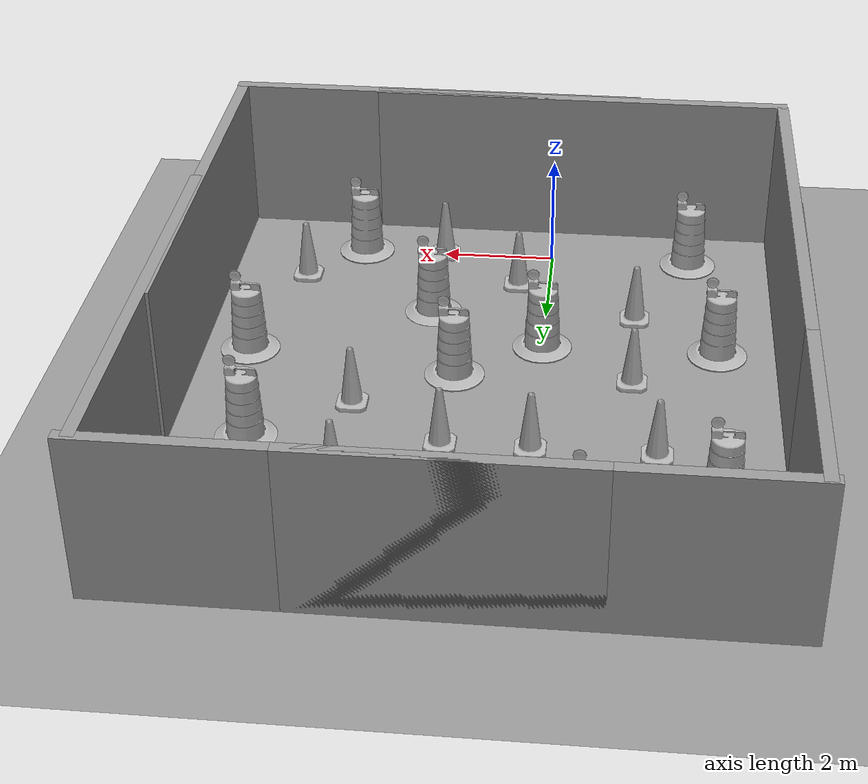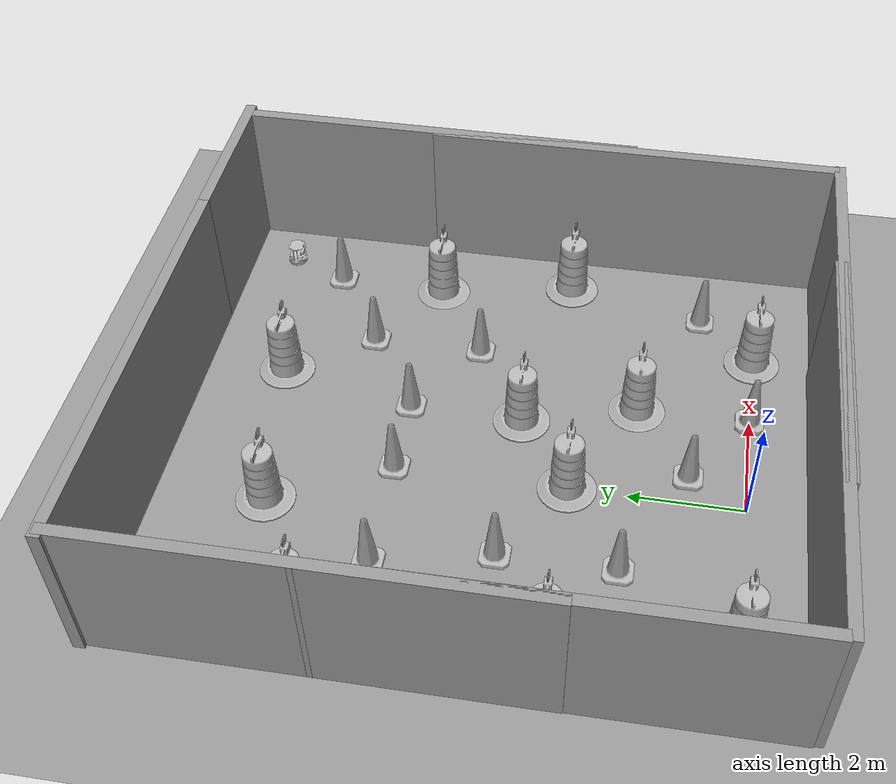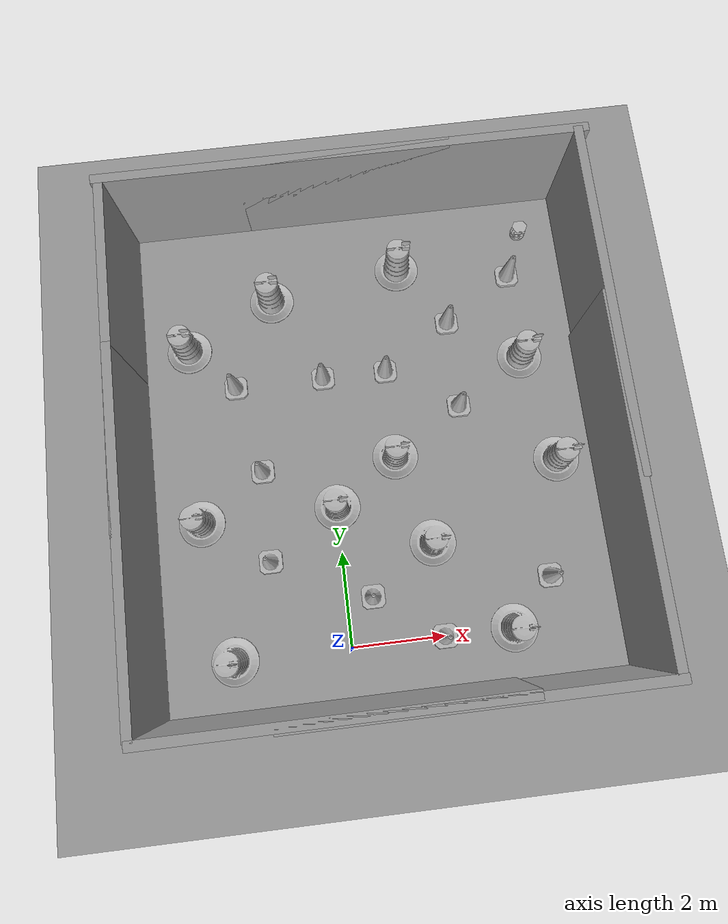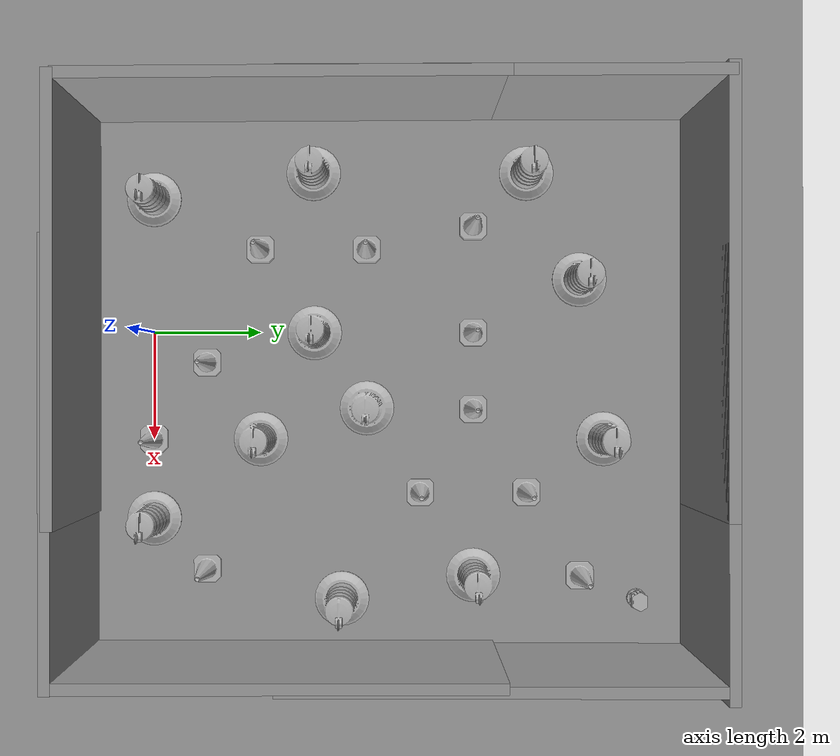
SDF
<sdf version="1.4">
 <world name="default">
  <light name="sun" type="directional">
   <pose>0 0 10 0 -0 0</pose>
   <diffuse>0.8 0.8 0.8 1</diffuse>
   <specular>0.2 0.2 0.2 1</specular>
   <attenuation>
    <range>1000</range>
    <constant>0.9</constant>
    <linear>0.01</linear>
    <quadratic>0.001</quadratic>
   </attenuation>
   <direction>0.5 0.1 -0.9</direction>
  </light>
  <scene><ambient>0.4 0.4 0.4 1</ambient><background>0.7 0.7 0.7 1</background><shadows>1</shadows></scene>
  <physics type="ode">
   <max_step_size>0.01</max_step_size>
   <real_time_factor>1</real_time_factor>
   <real_time_update_rate>100</real_time_update_rate>
   <gravity>0 0 -9.8</gravity>
  </physics>
  <model name="ground_plane_0">
   <static>1</static>
   <link name="link">
    <collision name="collision">
     <geometry><plane><normal>0 0 1</normal><size>100 100</size></plane></geometry>
     <surface><friction><ode><mu>100</mu><mu2>50</mu2></ode></friction></surface>
    </collision>
    <visual name="visual">
     <cast_shadows>0</cast_shadows>
     <geometry><plane><normal>0 0 1</normal><size>100 100</size></plane></geometry>
     <material>
      <script><uri>file://media/materials/scripts/gazebo.material</uri><name>Gazebo/Grey</name></script>
     </material>
    </visual>
    <velocity_decay><linear>0</linear><angular>0</angular></velocity_decay>
   </link>
   <pose>0.497681 0 0 0 -0 0</pose>
  </model>
  <spherical_coordinates>
   <surface_model>EARTH_WGS84</surface_model>
   <latitude_deg>0</latitude_deg>
   <longitude_deg>0</longitude_deg>
   <elevation>0</elevation>
   <heading_deg>0</heading_deg>
  </spherical_coordinates>
  <model name="grey_wall_1">
   <static>1</static>
   <link name="link">
    <pose>0 0 1.4 0 -0 0</pose>
    <collision name="collision"><geometry><box><size>7.5 0.2 2.8</size></box></geometry></collision>
    <visual name="visual">
     <cast_shadows>0</cast_shadows>
     <geometry><box><size>7.5 0.2 2.8</size></box></geometry>
     <material>
      <script>
       <uri>model://grey_wall/materials/scripts</uri>
       <uri>model://grey_wall/materials/textures</uri>
       <name>vrc/grey_wall</name>
      </script>
     </material>
    </visual>
    <velocity_decay><linear>0</linear><angular>0</angular></velocity_decay>
   </link>
   <pose>-0.400644 -1.11143 0 0 -0 0</pose>
  </model>
  <model name="grey_wall_2">
   <static>1</static>
   <link name="link">
    <pose>0 0 1.4 0 -0 0</pose>
    <collision name="collision"><geometry><box><size>7.5 0.2 2.8</size></box></geometry></collision>
    <visual name="visual">
     <cast_shadows>0</cast_shadows>
     <geometry><box><size>7.5 0.2 2.8</size></box></geometry>
     <material>
      <script>
       <uri>model://grey_wall/materials/scripts</uri>
       <uri>model://grey_wall/materials/textures</uri>
       <name>vrc/grey_wall</name>
      </script>
     </material>
    </visual>
    <velocity_decay><linear>0</linear><angular>0</angular></velocity_decay>
   </link>
   <pose>2.25578 -1.15272 0 0 -0 0</pose>
  </model>
  <model name="grey_wall_3">
   <static>1</static>
   <link name="link">
    <pose>0 0 1.4 0 -0 0</pose>
    <collision name="collision"><geometry><box><size>7.5 0.2 2.8</size></box></geometry></collision>
    <visual name="visual">
     <cast_shadows>0</cast_shadows>
     <geometry><box><size>7.5 0.2 2.8</size></box></geometry>
     <material>
      <script>
       <uri>model://grey_wall/materials/scripts</uri>
       <uri>model://grey_wall/materials/textures</uri>
       <name>vrc/grey_wall</name>
      </script>
     </material>
    </visual>
    <velocity_decay><linear>0</linear><angular>0</angular></velocity_decay>
   </link>
   <pose>-4.09244 2.68441 0 0 0 -1.56568</pose>
  </model>
  <model name="grey_wall_4">
   <static>1</static>
   <link name="link">
    <pose>0 0 1.4 0 -0 0</pose>
    <collision name="collision"><geometry><box><size>7.5 0.2 2.8</size></box></geometry></collision>
    <visual name="visual">
     <cast_shadows>0</cast_shadows>
     <geometry><box><size>7.5 0.2 2.8</size></box></geometry>
     <material>
      <script>
       <uri>model://grey_wall/materials/scripts</uri>
       <uri>model://grey_wall/materials/textures</uri>
       <name>vrc/grey_wall</name>
      </script>
     </material>
    </visual>
    <velocity_decay><linear>0</linear><angular>0</angular></velocity_decay>
   </link>
   <pose>-4.11112 6.31545 0 0 -0 1.57254</pose>
  </model>
  <model name="grey_wall_5">
   <static>1</static>
   <link name="link">
    <pose>0 0 1.4 0 -0 0</pose>
    <collision name="collision"><geometry><box><size>7.5 0.2 2.8</size></box></geometry></collision>
    <visual name="visual">
     <cast_shadows>0</cast_shadows>
     <geometry><box><size>7.5 0.2 2.8</size></box></geometry>
     <material>
      <script>
       <uri>model://grey_wall/materials/scripts</uri>
       <uri>model://grey_wall/materials/textures</uri>
       <name>vrc/grey_wall</name>
      </script>
     </material>
    </visual>
    <velocity_decay><linear>0</linear><angular>0</angular></velocity_decay>
   </link>
   <pose>-0.52469 10 0 0 -0 0</pose>
  </model>
  <model name="grey_wall_6">
   <static>1</static>
   <link name="link">
    <pose>0 0 1.4 0 -0 0</pose>
    <collision name="collision"><geometry><box><size>7.5 0.2 2.8</size></box></geometry></collision>
    <visual name="visual">
     <cast_shadows>0</cast_shadows>
     <geometry><box><size>7.5 0.2 2.8</size></box></geometry>
     <material>
      <script>
       <uri>model://grey_wall/materials/scripts</uri>
       <uri>model://grey_wall/materials/textures</uri>
       <name>vrc/grey_wall</name>
      </script>
     </material>
    </visual>
    <velocity_decay><linear>0</linear><angular>0</angular></velocity_decay>
   </link>
   <pose>2.43485 10 0 0 -0 0</pose>
  </model>
  <model name="grey_wall_7">
   <static>1</static>
   <link name="link">
    <pose>0 0 1.4 0 -0 0</pose>
    <collision name="collision"><geometry><box><size>7.5 0.2 2.8</size></box></geometry></collision>
    <visual name="visual">
     <cast_shadows>0</cast_shadows>
     <geometry><box><size>7.5 0.2 2.8</size></box></geometry>
     <material>
      <script>
       <uri>model://grey_wall/materials/scripts</uri>
       <uri>model://grey_wall/materials/textures</uri>
       <name>vrc/grey_wall</name>
      </script>
     </material>
    </visual>
    <velocity_decay><linear>0</linear><angular>0</angular></velocity_decay>
   </link>
   <pose>5.89002 2.61265 0 0 -0 1.57083</pose>
  </model>
  <model name="grey_wall_8">
   <static>1</static>
   <link name="link">
    <pose>0 0 1.4 0 -0 0</pose>
    <collision name="collision"><geometry><box><size>7.5 0.2 2.8</size></box></geometry></collision>
    <visual name="visual">
     <cast_shadows>0</cast_shadows>
     <geometry><box><size>7.5 0.2 2.8</size></box></geometry>
     <material>
      <script>
       <uri>model://grey_wall/materials/scripts</uri>
       <uri>model://grey_wall/materials/textures</uri>
       <name>vrc/grey_wall</name>
      </script>
     </material>
    </visual>
    <velocity_decay><linear>0</linear><angular>0</angular></velocity_decay>
   </link>
   <pose>5.94459 6.28638 0 0 0 -1.57326</pose>
  </model>
  <model name="Construction Barrel">
   <link name="link">
    <inertial>
     <pose>0 0 0.4 0 -0 0</pose>
     <mass>500</mass>
     <inertia><ixx>51.2096</ixx><iyy>51.2096</iyy><izz>25</izz><ixy>0</ixy><ixz>0</ixz><iyz>0</iyz></inertia>
    </inertial>
    <collision name="collision">
     <geometry><mesh><uri>model://construction_barrel/meshes/construction_barrel.dae</uri></mesh></geometry>
    </collision>
    <visual name="visual">
     <geometry><mesh><uri>model://construction_barrel/meshes/construction_barrel.dae</uri></mesh></geometry>
    </visual>
    <velocity_decay><linear>0</linear><angular>0</angular></velocity_decay>
   </link>
   <pose>0.000647 3.01751 -0.00017 -6.9e-05 -0.000543 -0.014763</pose>
   <static>0</static>
  </model>
  <model name="Construction Barrel_0">
   <link name="link">
    <inertial>
     <pose>0 0 0.4 0 -0 0</pose>
     <mass>500</mass>
     <inertia><ixx>51.2096</ixx><iyy>51.2096</iyy><izz>25</izz><ixy>0</ixy><ixz>0</ixz><iyz>0</iyz></inertia>
    </inertial>
    <collision name="collision">
     <geometry><mesh><uri>model://construction_barrel/meshes/construction_barrel.dae</uri></mesh></geometry>
    </collision>
    <visual name="visual">
     <geometry><mesh><uri>model://construction_barrel/meshes/construction_barrel.dae</uri></mesh></geometry>
    </visual>
    <velocity_decay><linear>0</linear><angular>0</angular></velocity_decay>
   </link>
   <pose>2.0001 1.99999 -0.033404 0.000357 0.000149 0.000376</pose>
   <static>0</static>
  </model>
  <model name="Construction Cone">
   <link name="link">
    <collision name="collision">
     <geometry>
      <mesh><scale>10 10 10</scale><uri>model://construction_cone/meshes/construction_cone.dae</uri></mesh>
     </geometry>
    </collision>
    <visual name="visual">
     <geometry>
      <mesh><scale>10 10 10</scale><uri>model://construction_cone/meshes/construction_cone.dae</uri></mesh>
     </geometry>
    </visual>
    <velocity_decay><linear>0</linear><angular>0</angular></velocity_decay>
    <inertial>
     <inertia><ixx>1</ixx><ixy>0</ixy><ixz>0</ixz><iyy>1</iyy><iyz>0</iyz><izz>1</izz></inertia>
     <mass>1</mass>
    </inertial>
   </link>
   <pose>-1.56736 2 -0.000878 6e-06 1e-06 -1e-06</pose>
   <static>0</static>
  </model>
  <model name="Construction Cone_0">
   <link name="link">
    <collision name="collision">
     <geometry>
      <mesh><scale>10 10 10</scale><uri>model://construction_cone/meshes/construction_cone.dae</uri></mesh>
     </geometry>
    </collision>
    <visual name="visual">
     <geometry>
      <mesh><scale>10 10 10</scale><uri>model://construction_cone/meshes/construction_cone.dae</uri></mesh>
     </geometry>
    </visual>
    <velocity_decay><linear>0</linear><angular>0</angular></velocity_decay>
    <inertial>
     <inertia><ixx>1</ixx><ixy>0</ixy><ixz>0</ixz><iyy>1</iyy><iyz>0</iyz><izz>1</izz></inertia>
     <mass>1</mass>
    </inertial>
   </link>
   <pose>-1.56447 4 -0.000878 6e-06 1e-06 -1e-06</pose>
   <static>0</static>
  </model>
  <model name="Construction Cone_1">
   <link name="link">
    <collision name="collision">
     <geometry>
      <mesh><scale>10 10 10</scale><uri>model://construction_cone/meshes/construction_cone.dae</uri></mesh>
     </geometry>
    </collision>
    <visual name="visual">
     <geometry>
      <mesh><scale>10 10 10</scale><uri>model://construction_cone/meshes/construction_cone.dae</uri></mesh>
     </geometry>
    </visual>
    <velocity_decay><linear>0</linear><angular>0</angular></velocity_decay>
    <inertial>
     <inertia><ixx>1</ixx><ixy>0</ixy><ixz>0</ixz><iyy>1</iyy><iyz>0</iyz><izz>1</izz></inertia>
     <mass>1</mass>
    </inertial>
   </link>
   <pose>4.43116 1 -0.000878 6e-06 1e-06 -1e-06</pose>
   <static>0</static>
  </model>
  <model name="Construction Cone_2">
   <link name="link">
    <collision name="collision">
     <geometry>
      <mesh><scale>10 10 10</scale><uri>model://construction_cone/meshes/construction_cone.dae</uri></mesh>
     </geometry>
    </collision>
    <visual name="visual">
     <geometry>
      <mesh><scale>10 10 10</scale><uri>model://construction_cone/meshes/construction_cone.dae</uri></mesh>
     </geometry>
    </visual>
    <velocity_decay><linear>0</linear><angular>0</angular></velocity_decay>
    <inertial>
     <inertia><ixx>1</ixx><ixy>0</ixy><ixz>0</ixz><iyy>1</iyy><iyz>0</iyz><izz>1</izz></inertia>
     <mass>1</mass>
    </inertial>
   </link>
   <pose>3 5 -0.000878 6e-06 1e-06 -1e-06</pose>
   <static>0</static>
  </model>
  <model name="Construction Cone_3">
   <link name="link">
    <collision name="collision">
     <geometry>
      <mesh><scale>10 10 10</scale><uri>model://construction_cone/meshes/construction_cone.dae</uri></mesh>
     </geometry>
    </collision>
    <visual name="visual">
     <geometry>
      <mesh><scale>10 10 10</scale><uri>model://construction_cone/meshes/construction_cone.dae</uri></mesh>
     </geometry>
    </visual>
    <velocity_decay><linear>0</linear><angular>0</angular></velocity_decay>
    <inertial>
     <inertia><ixx>1</ixx><ixy>0</ixy><ixz>0</ixz><iyy>1</iyy><iyz>0</iyz><izz>1</izz></inertia>
     <mass>1</mass>
    </inertial>
   </link>
   <pose>1.43816 6 -0.000878 6e-06 1e-06 -1e-06</pose>
   <static>0</static>
  </model>
  <model name="Construction Cone_4">
   <link name="link">
    <collision name="collision">
     <geometry>
      <mesh><scale>10 10 10</scale><uri>model://construction_cone/meshes/construction_cone.dae</uri></mesh>
     </geometry>
    </collision>
    <visual name="visual">
     <geometry>
      <mesh><scale>10 10 10</scale><uri>model://construction_cone/meshes/construction_cone.dae</uri></mesh>
     </geometry>
    </visual>
    <velocity_decay><linear>0</linear><angular>0</angular></velocity_decay>
    <inertial>
     <inertia><ixx>1</ixx><ixy>0</ixy><ixz>0</ixz><iyy>1</iyy><iyz>0</iyz><izz>1</izz></inertia>
     <mass>1</mass>
    </inertial>
   </link>
   <pose>-0 6 -0.000878 6e-06 1e-06 -1e-06</pose>
   <static>0</static>
  </model>
  <model name="Construction Cone_5">
   <link name="link">
    <collision name="collision">
     <geometry>
      <mesh><scale>10 10 10</scale><uri>model://construction_cone/meshes/construction_cone.dae</uri></mesh>
     </geometry>
    </collision>
    <visual name="visual">
     <geometry>
      <mesh><scale>10 10 10</scale><uri>model://construction_cone/meshes/construction_cone.dae</uri></mesh>
     </geometry>
    </visual>
    <velocity_decay><linear>0</linear><angular>0</angular></velocity_decay>
    <inertial>
     <inertia><ixx>1</ixx><ixy>0</ixy><ixz>0</ixz><iyy>1</iyy><iyz>0</iyz><izz>1</izz></inertia>
     <mass>1</mass>
    </inertial>
   </link>
   <pose>-2 6 -0.000878 6e-06 1e-06 -1e-06</pose>
   <static>0</static>
  </model>
  <model name="Construction Barrel_1">
   <link name="link">
    <inertial>
     <pose>0 0 0.4 0 -0 0</pose>
     <mass>500</mass>
     <inertia><ixx>51.2096</ixx><iyy>51.2096</iyy><izz>25</izz><ixy>0</ixy><ixz>0</ixz><iyz>0</iyz></inertia>
    </inertial>
    <collision name="collision">
     <geometry><mesh><uri>model://construction_barrel/meshes/construction_barrel.dae</uri></mesh></geometry>
    </collision>
    <visual name="visual">
     <geometry><mesh><uri>model://construction_barrel/meshes/construction_barrel.dae</uri></mesh></geometry>
    </visual>
    <velocity_decay><linear>0</linear><angular>0</angular></velocity_decay>
   </link>
   <pose>1.41662 4.00003 -9.1e-05 0.00031 0.000179 9.8e-05</pose>
   <static>0</static>
  </model>
  <model name="Construction Barrel_2">
   <link name="link">
    <inertial>
     <pose>0 0 0.4 0 -0 0</pose>
     <mass>500</mass>
     <inertia><ixx>51.2096</ixx><iyy>51.2096</iyy><izz>25</izz><ixy>0</ixy><ixz>0</ixz><iyz>0</iyz></inertia>
    </inertial>
    <collision name="collision">
     <geometry><mesh><uri>model://construction_barrel/meshes/construction_barrel.dae</uri></mesh></geometry>
    </collision>
    <visual name="visual">
     <geometry><mesh><uri>model://construction_barrel/meshes/construction_barrel.dae</uri></mesh></geometry>
    </visual>
    <velocity_decay><linear>0</linear><angular>0</angular></velocity_decay>
   </link>
   <pose>-0.999958 8.00004 -0.00017 -6.9e-05 -0.000543 7e-05</pose>
   <static>0</static>
  </model>
  <model name="Construction Barrel_3">
   <link name="link">
    <inertial>
     <pose>0 0 0.4 0 -0 0</pose>
     <mass>500</mass>
     <inertia><ixx>51.2096</ixx><iyy>51.2096</iyy><izz>25</izz><ixy>0</ixy><ixz>0</ixz><iyz>0</iyz></inertia>
    </inertial>
    <collision name="collision">
     <geometry><mesh><uri>model://construction_barrel/meshes/construction_barrel.dae</uri></mesh></geometry>
    </collision>
    <visual name="visual">
     <geometry><mesh><uri>model://construction_barrel/meshes/construction_barrel.dae</uri></mesh></geometry>
    </visual>
    <velocity_decay><linear>0</linear><angular>0</angular></velocity_decay>
   </link>
   <pose>-2.51087 4.3e-05 -9.1e-05 0.00031 0.000179 4.3e-05</pose>
   <static>0</static>
  </model>
  <model name="Construction Barrel_4">
   <link name="link">
    <inertial>
     <pose>0 0 0.4 0 -0 0</pose>
     <mass>500</mass>
     <inertia><ixx>51.2096</ixx><iyy>51.2096</iyy><izz>25</izz><ixy>0</ixy><ixz>0</ixz><iyz>0</iyz></inertia>
    </inertial>
    <collision name="collision">
     <geometry><mesh><uri>model://construction_barrel/meshes/construction_barrel.dae</uri></mesh></geometry>
    </collision>
    <visual name="visual">
     <geometry><mesh><uri>model://construction_barrel/meshes/construction_barrel.dae</uri></mesh></geometry>
    </visual>
    <velocity_decay><linear>0</linear><angular>0</angular></velocity_decay>
   </link>
   <pose>3.48872 5.2e-05 -0.00017 -6.9e-05 -0.000543 1.5e-05</pose>
   <static>0</static>
  </model>
  <model name="Construction Barrel_5">
   <link name="link">
    <inertial>
     <pose>0 0 0.4 0 -0 0</pose>
     <mass>500</mass>
     <inertia><ixx>51.2096</ixx><iyy>51.2096</iyy><izz>25</izz><ixy>0</ixy><ixz>0</ixz><iyz>0</iyz></inertia>
    </inertial>
    <collision name="collision">
     <geometry><mesh><uri>model://construction_barrel/meshes/construction_barrel.dae</uri></mesh></geometry>
    </collision>
    <visual name="visual">
     <geometry><mesh><uri>model://construction_barrel/meshes/construction_barrel.dae</uri></mesh></geometry>
    </visual>
    <velocity_decay><linear>0</linear><angular>0</angular></velocity_decay>
   </link>
   <pose>5.00003 3.52793 -9.1e-05 0.00031 0.000179 -1.3e-05</pose>
   <static>0</static>
  </model>
  <model name="mobile_base">
   <link name="base_footprint">
    <inertial>
     <pose>-0.00949586 1.25983e-05 0.135573 0 -0 0</pose>
     <mass>4.9213</mass>
     <inertia>
      <ixx>0.142129</ixx>
      <ixy>-4.09257e-06</ixy>
      <ixz>0.0154899</ixz>
      <iyy>0.140784</iyy>
      <iyz>6.52071e-06</iyz>
      <izz>0.0801071</izz>
     </inertia>
    </inertial>
    <collision name="base_footprint_collision_base_link">
     <pose>0 0 0.06969 0 -0 0</pose>
     <geometry><cylinder><length>0.10938</length><radius>0.178</radius></cylinder></geometry>
     <surface><friction><ode><mu>0.3</mu><mu2>0.3</mu2></ode></friction></surface>
    </collision>
    <collision name="base_footprint_collision_camera_link">
     <pose>-0.118 0 0.2812 0 -0 0</pose>
     <geometry><box><size>0.07271 0.27794 0.073</size></box></geometry>
    </collision>
    <collision name="base_footprint_collision_caster_back_link">
     <pose>-0.135 0 0.0192 -1.5708 0 0</pose>
     <geometry><cylinder><length>0.0176</length><radius>0.017</radius></cylinder></geometry>
     <surface>
      <contact><ode><kp>1e+06</kp><kd>100</kd><max_vel>1</max_vel><min_depth>0.001</min_depth></ode></contact>
      <friction><ode><mu>0</mu><mu2>0</mu2></ode></friction>
     </surface>
    </collision>
    <collision name="base_footprint_collision_caster_front_link">
     <pose>0.115 0 0.0172 -1.5708 0 0</pose>
     <geometry><cylinder><length>0.0176</length><radius>0.017</radius></cylinder></geometry>
     <surface>
      <contact><ode><kp>1e+06</kp><kd>100</kd><max_vel>1</max_vel><min_depth>0.001</min_depth></ode></contact>
      <friction><ode><mu>0</mu><mu2>0</mu2></ode></friction>
     </surface>
    </collision>
    <collision name="base_footprint_collision_plate_bottom_link">
     <pose>0 0 0.1408 0 -0 0</pose>
     <geometry><cylinder><length>0.006</length><radius>0.17</radius></cylinder></geometry>
    </collision>
    <collision name="base_footprint_collision_plate_middle_link">
     <pose>0 0 0.1976 0 -0 0</pose>
     <geometry><cylinder><length>0.006</length><radius>0.17</radius></cylinder></geometry>
    </collision>
    <collision name="base_footprint_collision_plate_top_link">
     <pose>0 0 0.4068 0 -0 0</pose>
     <geometry><cylinder><length>0.006</length><radius>0.17</radius></cylinder></geometry>
    </collision>
    <collision name="base_footprint_collision_pole_bottom_0_link">
     <pose>0.12 0.082 0.113 0 -0 0</pose>
     <geometry><cylinder><length>0.0492</length><radius>0.006</radius></cylinder></geometry>
    </collision>
    <collision name="base_footprint_collision_pole_bottom_1_link">
     <pose>0.055 0.12 0.113 0 -0 0</pose>
     <geometry><cylinder><length>0.0492</length><radius>0.006</radius></cylinder></geometry>
    </collision>
    <collision name="base_footprint_collision_pole_bottom_2_link">
     <pose>-0.055 0.12 0.113 0 -0 0</pose>
     <geometry><cylinder><length>0.0492</length><radius>0.006</radius></cylinder></geometry>
    </collision>
    <collision name="base_footprint_collision_pole_bottom_3_link">
     <pose>0.12 -0.082 0.113 0 -0 0</pose>
     <geometry><cylinder><length>0.0492</length><radius>0.006</radius></cylinder></geometry>
    </collision>
    <collision name="base_footprint_collision_pole_bottom_4_link">
     <pose>0.055 -0.12 0.113 0 -0 0</pose>
     <geometry><cylinder><length>0.0492</length><radius>0.006</radius></cylinder></geometry>
    </collision>
    <collision name="base_footprint_collision_pole_bottom_5_link">
     <pose>-0.055 -0.12 0.113 0 -0 0</pose>
     <geometry><cylinder><length>0.0492</length><radius>0.006</radius></cylinder></geometry>
    </collision>
    <collision name="base_footprint_collision_pole_kinect_0_link">
     <pose>-0.1024 0.098 0.2474 0 -0 0</pose>
     <geometry><cylinder><length>0.0936</length><radius>0.006</radius></cylinder></geometry>
    </collision>
    <collision name="base_footprint_collision_pole_kinect_1_link">
     <pose>-0.1024 -0.098 0.2474 0 -0 0</pose>
     <geometry><cylinder><length>0.0936</length><radius>0.006</radius></cylinder></geometry>
    </collision>
    <collision name="base_footprint_collision_pole_middle_0_link">
     <pose>0.0381 0.1505 0.1742 0 -0 0</pose>
     <geometry><cylinder><length>0.0608</length><radius>0.006</radius></cylinder></geometry>
    </collision>
    <collision name="base_footprint_collision_pole_middle_1_link">
     <pose>0.0381 -0.1505 0.1742 0 -0 0</pose>
     <geometry><cylinder><length>0.0608</length><radius>0.006</radius></cylinder></geometry>
    </collision>
    <collision name="base_footprint_collision_pole_middle_2_link">
     <pose>-0.0381 0.1505 0.1742 0 -0 0</pose>
     <geometry><cylinder><length>0.0608</length><radius>0.006</radius></cylinder></geometry>
    </collision>
    <collision name="base_footprint_collision_pole_middle_3_link">
     <pose>-0.0381 -0.1505 0.1742 0 -0 0</pose>
     <geometry><cylinder><length>0.0608</length><radius>0.006</radius></cylinder></geometry>
    </collision>
    <collision name="base_footprint_collision_pole_top_0_link">
     <pose>0.0381 0.1505 0.3022 0 -0 0</pose>
     <geometry><cylinder><length>0.2032</length><radius>0.006</radius></cylinder></geometry>
    </collision>
    <collision name="base_footprint_collision_pole_top_1_link">
     <pose>0.0381 -0.1505 0.3022 0 -0 0</pose>
     <geometry><cylinder><length>0.2032</length><radius>0.006</radius></cylinder></geometry>
    </collision>
    <collision name="base_footprint_collision_pole_top_2_link">
     <pose>-0.0381 0.1505 0.3022 0 -0 0</pose>
     <geometry><cylinder><length>0.2032</length><radius>0.006</radius></cylinder></geometry>
    </collision>
    <collision name="base_footprint_collision_pole_top_3_link">
     <pose>-0.0381 -0.1505 0.3022 0 -0 0</pose>
     <geometry><cylinder><length>0.2032</length><radius>0.006</radius></cylinder></geometry>
    </collision>
    <visual name="base_footprint_visual_base_link">
     <pose>0.001 0 0.06219 0 -0 0</pose>
     <geometry>
      <mesh>
       <scale>1 1 1</scale>
       <uri>/home/chenlee/kobuki/src/kobuki/kobuki_description/meshes/main_body.dae</uri>
      </mesh>
     </geometry>
    </visual>
    <visual name="base_footprint_visual_camera_link">
     <pose>-0.118 0 0.2812 0 -0 1.5708</pose>
     <geometry>
      <mesh>
       <scale>1 1 1</scale>
       <uri>/home/chenlee/turtlebot/src/turtlebot/turtlebot_description/meshes/sensors/kinect.dae</uri>
      </mesh>
     </geometry>
    </visual>
    <visual name="base_footprint_visual_plate_bottom_link">
     <pose>0.02364 0 0.1408 0 -0 0</pose>
     <geometry>
      <mesh>
       <scale>1 1 1</scale>
       <uri>/home/chenlee/turtlebot/src/turtlebot/turtlebot_description/meshes/stacks/hexagons/plate_bottom.dae</uri>
      </mesh>
     </geometry>
    </visual>
    <visual name="base_footprint_visual_plate_middle_link">
     <pose>-0.01364 0 0.1976 0 -0 0</pose>
     <geometry>
      <mesh>
       <scale>1 1 1</scale>
       <uri>/home/chenlee/turtlebot/src/turtlebot/turtlebot_description/meshes/stacks/hexagons/plate_middle.dae</uri>
      </mesh>
     </geometry>
    </visual>
    <visual name="base_footprint_visual_plate_top_link">
     <pose>-0.01364 0 0.4068 0 -0 0</pose>
     <geometry>
      <mesh>
       <scale>1 1 1</scale>
       <uri>/home/chenlee/turtlebot/src/turtlebot/turtlebot_description/meshes/stacks/hexagons/plate_top.dae</uri>
      </mesh>
     </geometry>
    </visual>
    <visual name="base_footprint_visual_pole_bottom_0_link">
     <pose>0.12 0.082 0.113 0 -0 0</pose>
     <geometry>
      <mesh>
       <scale>1 1 1</scale>
       <uri>/home/chenlee/turtlebot/src/turtlebot/turtlebot_description/meshes/stacks/hexagons/pole_bottom.dae</uri>
      </mesh>
     </geometry>
    </visual>
    <visual name="base_footprint_visual_pole_bottom_1_link">
     <pose>0.055 0.12 0.113 0 -0 0</pose>
     <geometry>
      <mesh>
       <scale>1 1 1</scale>
       <uri>/home/chenlee/turtlebot/src/turtlebot/turtlebot_description/meshes/stacks/hexagons/pole_bottom.dae</uri>
      </mesh>
     </geometry>
    </visual>
    <visual name="base_footprint_visual_pole_bottom_2_link">
     <pose>-0.055 0.12 0.113 0 -0 0</pose>
     <geometry>
      <mesh>
       <scale>1 1 1</scale>
       <uri>/home/chenlee/turtlebot/src/turtlebot/turtlebot_description/meshes/stacks/hexagons/pole_bottom.dae</uri>
      </mesh>
     </geometry>
    </visual>
    <visual name="base_footprint_visual_pole_bottom_3_link">
     <pose>0.12 -0.082 0.113 0 -0 0</pose>
     <geometry>
      <mesh>
       <scale>1 1 1</scale>
       <uri>/home/chenlee/turtlebot/src/turtlebot/turtlebot_description/meshes/stacks/hexagons/pole_bottom.dae</uri>
      </mesh>
     </geometry>
    </visual>
    <visual name="base_footprint_visual_pole_bottom_4_link">
     <pose>0.055 -0.12 0.113 0 -0 0</pose>
     <geometry>
      <mesh>
       <scale>1 1 1</scale>
       <uri>/home/chenlee/turtlebot/src/turtlebot/turtlebot_description/meshes/stacks/hexagons/pole_bottom.dae</uri>
      </mesh>
     </geometry>
    </visual>
    <visual name="base_footprint_visual_pole_bottom_5_link">
     <pose>-0.055 -0.12 0.113 0 -0 0</pose>
     <geometry>
      <mesh>
       <scale>1 1 1</scale>
       <uri>/home/chenlee/turtlebot/src/turtlebot/turtlebot_description/meshes/stacks/hexagons/pole_bottom.dae</uri>
      </mesh>
     </geometry>
    </visual>
    <visual name="base_footprint_visual_pole_kinect_0_link">
     <pose>-0.1024 0.098 0.2374 0 -0 0</pose>
     <geometry>
      <mesh>
       <scale>1 1 1</scale>
       <uri>/home/chenlee/turtlebot/src/turtlebot/turtlebot_description/meshes/sensors/sensor_pole.dae</uri>
      </mesh>
     </geometry>
    </visual>
    <visual name="base_footprint_visual_pole_kinect_1_link">
     <pose>-0.1024 -0.098 0.2374 0 -0 0</pose>
     <geometry>
      <mesh>
       <scale>1 1 1</scale>
       <uri>/home/chenlee/turtlebot/src/turtlebot/turtlebot_description/meshes/sensors/sensor_pole.dae</uri>
      </mesh>
     </geometry>
    </visual>
    <visual name="base_footprint_visual_pole_middle_0_link">
     <pose>0.0381 0.1505 0.1742 3.14159 -2.06823e-13 3.14159</pose>
     <geometry>
      <mesh>
       <scale>1 1 1</scale>
       <uri>/home/chenlee/turtlebot/src/turtlebot/turtlebot_description/meshes/stacks/hexagons/pole_middle.dae</uri>
      </mesh>
     </geometry>
    </visual>
    <visual name="base_footprint_visual_pole_middle_1_link">
     <pose>0.0381 -0.1505 0.1742 3.14159 -2.06823e-13 3.14159</pose>
     <geometry>
      <mesh>
       <scale>1 1 1</scale>
       <uri>/home/chenlee/turtlebot/src/turtlebot/turtlebot_description/meshes/stacks/hexagons/pole_middle.dae</uri>
      </mesh>
     </geometry>
    </visual>
    <visual name="base_footprint_visual_pole_middle_2_link">
     <pose>-0.0381 0.1505 0.1742 3.14159 -2.06823e-13 3.14159</pose>
     <geometry>
      <mesh>
       <scale>1 1 1</scale>
       <uri>/home/chenlee/turtlebot/src/turtlebot/turtlebot_description/meshes/stacks/hexagons/pole_middle.dae</uri>
      </mesh>
     </geometry>
    </visual>
    <visual name="base_footprint_visual_pole_middle_3_link">
     <pose>-0.0381 -0.1505 0.1742 3.14159 -2.06823e-13 3.14159</pose>
     <geometry>
      <mesh>
       <scale>1 1 1</scale>
       <uri>/home/chenlee/turtlebot/src/turtlebot/turtlebot_description/meshes/stacks/hexagons/pole_middle.dae</uri>
      </mesh>
     </geometry>
    </visual>
    <visual name="base_footprint_visual_pole_top_0_link">
     <pose>0.0381 0.1505 0.3022 0 -0 0</pose>
     <geometry>
      <mesh>
       <scale>1 1 1</scale>
       <uri>/home/chenlee/turtlebot/src/turtlebot/turtlebot_description/meshes/stacks/hexagons/pole_top.dae</uri>
      </mesh>
     </geometry>
    </visual>
    <visual name="base_footprint_visual_pole_top_1_link">
     <pose>0.0381 -0.1505 0.3022 0 -0 0</pose>
     <geometry>
      <mesh>
       <scale>1 1 1</scale>
       <uri>/home/chenlee/turtlebot/src/turtlebot/turtlebot_description/meshes/stacks/hexagons/pole_top.dae</uri>
      </mesh>
     </geometry>
    </visual>
    <visual name="base_footprint_visual_pole_top_2_link">
     <pose>-0.0381 0.1505 0.3022 0 -0 0</pose>
     <geometry>
      <mesh>
       <scale>1 1 1</scale>
       <uri>/home/chenlee/turtlebot/src/turtlebot/turtlebot_description/meshes/stacks/hexagons/pole_top.dae</uri>
      </mesh>
     </geometry>
    </visual>
    <visual name="base_footprint_visual_pole_top_3_link">
     <pose>-0.0381 -0.1505 0.3022 0 -0 0</pose>
     <geometry>
      <mesh>
       <scale>1 1 1</scale>
       <uri>/home/chenlee/turtlebot/src/turtlebot/turtlebot_description/meshes/stacks/hexagons/pole_top.dae</uri>
      </mesh>
     </geometry>
    </visual>
    <velocity_decay><linear>0</linear><angular>0</angular></velocity_decay>
    <sensor name="bumpers" type="contact">
     <always_on>1</always_on>
     <update_rate>50</update_rate>
     <visualize>1</visualize>
     <contact><collision>base_footprint_collision_base_link</collision><topic>__default_topic__</topic></contact>
     <pose>0 0 0.0102 0 -0 0</pose>
    </sensor>
    <velocity_decay><linear>0</linear><angular>0</angular></velocity_decay>
    <sensor name="camera" type="depth">
     <always_on>1</always_on>
     <update_rate>20</update_rate>
     <camera name="__default__">
      <horizontal_fov>1.0472</horizontal_fov>
      <image><format>B8G8R8</format><width>640</width><height>480</height></image>
      <clip><near>0.05</near><far>8</far></clip>
     </camera>
     <plugin name="kinect_camera_controller" filename="libgazebo_ros_openni_kinect.so">
      <cameraName>camera</cameraName>
      <alwaysOn>true</alwaysOn>
      <updateRate>10</updateRate>
      <imageTopicName>rgb/image_raw</imageTopicName>
      <depthImageTopicName>depth/image_raw</depthImageTopicName>
      <pointCloudTopicName>depth/points</pointCloudTopicName>
      <cameraInfoTopicName>rgb/camera_info</cameraInfoTopicName>
      <depthImageCameraInfoTopicName>depth/camera_info</depthImageCameraInfoTopicName>
      <frameName>camera_depth_optical_frame</frameName>
      <baseline>0.1</baseline>
      <distortion_k1>0.0</distortion_k1>
      <distortion_k2>0.0</distortion_k2>
      <distortion_k3>0.0</distortion_k3>
      <distortion_t1>0.0</distortion_t1>
      <distortion_t2>0.0</distortion_t2>
      <pointCloudCutoff>0.4</pointCloudCutoff>
      <robotNamespace>/</robotNamespace>
     </plugin>
     <pose>-0.118 0 0.2812 0 -0 0</pose>
    </sensor>
    <velocity_decay><linear>0</linear><angular>0</angular></velocity_decay>
    <velocity_decay><linear>0</linear><angular>0</angular></velocity_decay>
    <velocity_decay><linear>0</linear><angular>0</angular></velocity_decay>
    <sensor name="cliff_sensor_front" type="ray">
     <always_on>1</always_on>
     <update_rate>50</update_rate>
     <visualize>1</visualize>
     <ray>
      <scan>
       <horizontal>
        <samples>50</samples>
        <resolution>1</resolution>
        <min_angle>-0.0436</min_angle>
        <max_angle>0.0436</max_angle>
       </horizontal>
      </scan>
      <range><min>0.01</min><max>0.15</max><resolution>1</resolution></range>
     </ray>
     <pose>0.156 0 0.0316 3.14159 1.57079 3.14159</pose>
    </sensor>
    <velocity_decay><linear>0</linear><angular>0</angular></velocity_decay>
    <sensor name="cliff_sensor_left" type="ray">
     <always_on>1</always_on>
     <update_rate>50</update_rate>
     <visualize>1</visualize>
     <ray>
      <scan>
       <horizontal>
        <samples>50</samples>
        <resolution>1</resolution>
        <min_angle>-0.0436</min_angle>
        <max_angle>0.0436</max_angle>
       </horizontal>
      </scan>
      <range><min>0.01</min><max>0.15</max><resolution>1</resolution></range>
     </ray>
     <pose>0.08734 0.13601 0.0316 3.14159 1.57079 3.14159</pose>
    </sensor>
    <velocity_decay><linear>0</linear><angular>0</angular></velocity_decay>
    <sensor name="cliff_sensor_right" type="ray">
     <always_on>1</always_on>
     <update_rate>50</update_rate>
     <visualize>1</visualize>
     <ray>
      <scan>
       <horizontal>
        <samples>50</samples>
        <resolution>1</resolution>
        <min_angle>-0.0436</min_angle>
        <max_angle>0.0436</max_angle>
       </horizontal>
      </scan>
      <range><min>0.01</min><max>0.15</max><resolution>1</resolution></range>
     </ray>
     <pose>0.085 -0.13601 0.0316 3.14159 1.57079 3.14159</pose>
    </sensor>
    <velocity_decay><linear>0</linear><angular>0</angular></velocity_decay>
    <sensor name="imu" type="imu">
     <always_on>1</always_on>
     <update_rate>50</update_rate>
     <visualize>0</visualize>
     <imu>
      <noise>
       <type>gaussian</type>
       <rate><mean>0</mean><stddev>1.96e-06</stddev><bias_mean>0</bias_mean><bias_stddev>0</bias_stddev></rate>
       <accel><mean>0</mean><stddev>0.017</stddev><bias_mean>0.1</bias_mean><bias_stddev>0.001</bias_stddev></accel>
      </noise>
     </imu>
     <pose>0.056 0.062 0.0304 0 -0 0</pose>
    </sensor>
   </link>
   <link name="wheel_left_link">
    <pose>0 0.115 0.0352 -1.5708 0 0</pose>
    <inertial>
     <mass>0.01</mass>
     <inertia><ixx>0.001</ixx><ixy>0</ixy><ixz>0</ixz><iyy>0.001</iyy><iyz>0</iyz><izz>0.001</izz></inertia>
    </inertial>
    <collision name="wheel_left_link_collision">
     <geometry><cylinder><length>0.0206</length><radius>0.0352</radius></cylinder></geometry>
     <surface>
      <contact><ode><kp>1e+06</kp><kd>100</kd><max_vel>1</max_vel><min_depth>0.001</min_depth></ode></contact>
      <friction><ode><mu>1</mu><mu2>1</mu2></ode></friction>
     </surface>
    </collision>
    <visual name="wheel_left_link_visual">
     <geometry>
      <mesh>
       <scale>1 1 1</scale>
       <uri>/home/chenlee/kobuki/src/kobuki/kobuki_description/meshes/wheel.dae</uri>
      </mesh>
     </geometry>
    </visual>
    <velocity_decay><linear>0</linear><angular>0</angular></velocity_decay>
   </link>
   <joint name="wheel_left_joint" type="revolute">
    <child>wheel_left_link</child>
    <parent>base_footprint</parent>
    <axis><xyz>0 1 0</xyz><limit><lower>-1e+16</lower><upper>1e+16</upper></limit></axis>
   </joint>
   <link name="wheel_right_link">
    <pose>0 -0.115 0.0352 -1.5708 0 0</pose>
    <inertial>
     <mass>0.01</mass>
     <inertia><ixx>0.001</ixx><ixy>0</ixy><ixz>0</ixz><iyy>0.001</iyy><iyz>0</iyz><izz>0.001</izz></inertia>
    </inertial>
    <collision name="wheel_right_link_collision">
     <geometry><cylinder><length>0.0206</length><radius>0.035</radius></cylinder></geometry>
     <surface>
      <contact><ode><kp>1e+06</kp><kd>100</kd><max_vel>1</max_vel><min_depth>0.001</min_depth></ode></contact>
      <friction><ode><mu>1</mu><mu2>1</mu2></ode></friction>
     </surface>
    </collision>
    <visual name="wheel_right_link_visual">
     <geometry>
      <mesh>
       <scale>1 1 1</scale>
       <uri>/home/chenlee/kobuki/src/kobuki/kobuki_description/meshes/wheel.dae</uri>
      </mesh>
     </geometry>
    </visual>
    <velocity_decay><linear>0</linear><angular>0</angular></velocity_decay>
   </link>
   <joint name="wheel_right_joint" type="revolute">
    <child>wheel_right_link</child>
    <parent>base_footprint</parent>
    <axis><xyz>0 1 0</xyz><limit><lower>-1e+16</lower><upper>1e+16</upper></limit></axis>
   </joint>
   <plugin name="gps" filename="libhector_gazebo_ros_gps.so">
    <updateRate>10.0</updateRate>
    <topicName>sensor_msgs/NavSatFix</topicName>
    <gaussianNoise>0.0 0.0 0.0</gaussianNoise>
    <offset>0 0 0</offset>
    <velocityGaussianNoise>0 0 0</velocityGaussianNoise>
    <frameId>base_link</frameId>
    <robotNamespace>/</robotNamespace>
   </plugin>
   <static>0</static>
   <plugin name="kobuki_controller" filename="libgazebo_ros_kobuki.so">
    <publish_tf>1</publish_tf>
    <left_wheel_joint_name>wheel_left_joint</left_wheel_joint_name>
    <right_wheel_joint_name>wheel_right_joint</right_wheel_joint_name>
    <wheel_separation>.230</wheel_separation>
    <wheel_diameter>0.070</wheel_diameter>
    <torque>1.0</torque>
    <velocity_command_timeout>0.6</velocity_command_timeout>
    <cliff_sensor_left_name>cliff_sensor_left</cliff_sensor_left_name>
    <cliff_sensor_center_name>cliff_sensor_front</cliff_sensor_center_name>
    <cliff_sensor_right_name>cliff_sensor_right</cliff_sensor_right_name>
    <cliff_detection_threshold>0.04</cliff_detection_threshold>
    <bumper_name>bumpers</bumper_name>
    <imu_name>imu</imu_name>
    <robotNamespace>/</robotNamespace>
   </plugin>
   <pose>4.99349 9.0574 -0.001131 1.5e-05 -0.008002 1.58202</pose>
  </model>
  <model name="Construction Cone_6">
   <link name="link">
    <collision name="collision">
     <geometry>
      <mesh><scale>10 10 10</scale><uri>model://construction_cone/meshes/construction_cone.dae</uri></mesh>
     </geometry>
    </collision>
    <visual name="visual">
     <geometry>
      <mesh><scale>10 10 10</scale><uri>model://construction_cone/meshes/construction_cone.dae</uri></mesh>
     </geometry>
    </visual>
    <velocity_decay><linear>0</linear><angular>0</angular></velocity_decay>
    <inertial>
     <inertia><ixx>1</ixx><ixy>0</ixy><ixz>0</ixz><iyy>1</iyy><iyz>0</iyz><izz>1</izz></inertia>
     <mass>1</mass>
    </inertial>
   </link>
   <pose>3 7 -0.000878 6e-06 1e-06 -1e-06</pose>
   <static>0</static>
  </model>
  <model name="Construction Cone_7">
   <link name="link">
    <collision name="collision">
     <geometry>
      <mesh><scale>10 10 10</scale><uri>model://construction_cone/meshes/construction_cone.dae</uri></mesh>
     </geometry>
    </collision>
    <visual name="visual">
     <geometry>
      <mesh><scale>10 10 10</scale><uri>model://construction_cone/meshes/construction_cone.dae</uri></mesh>
     </geometry>
    </visual>
    <velocity_decay><linear>0</linear><angular>0</angular></velocity_decay>
    <inertial>
     <inertia><ixx>1</ixx><ixy>0</ixy><ixz>0</ixz><iyy>1</iyy><iyz>0</iyz><izz>1</izz></inertia>
     <mass>1</mass>
    </inertial>
   </link>
   <pose>4.56927 8 -0.000878 6e-06 1e-06 -1e-06</pose>
   <static>0</static>
  </model>
  <model name="Construction Barrel_6">
   <link name="link">
    <inertial>
     <pose>0 0 0.4 0 -0 0</pose>
     <mass>500</mass>
     <inertia><ixx>51.2096</ixx><iyy>51.2096</iyy><izz>25</izz><ixy>0</ixy><ixz>0</ixz><iyz>0</iyz></inertia>
    </inertial>
    <collision name="collision">
     <geometry><mesh><uri>model://construction_barrel/meshes/construction_barrel.dae</uri></mesh></geometry>
    </collision>
    <visual name="visual">
     <geometry><mesh><uri>model://construction_barrel/meshes/construction_barrel.dae</uri></mesh></geometry>
    </visual>
    <velocity_decay><linear>0</linear><angular>0</angular></velocity_decay>
   </link>
   <pose>4.56646 6.00012 -0.036423 -4.1e-05 -0.000496 -4.8e-05</pose>
   <static>0</static>
  </model>
  <model name="Construction Barrel_7">
   <link name="link">
    <inertial>
     <pose>0 0 0.4 0 -0 0</pose>
     <mass>500</mass>
     <inertia><ixx>51.2096</ixx><iyy>51.2096</iyy><izz>25</izz><ixy>0</ixy><ixz>0</ixz><iyz>0</iyz></inertia>
    </inertial>
    <collision name="collision">
     <geometry><mesh><uri>model://construction_barrel/meshes/construction_barrel.dae</uri></mesh></geometry>
    </collision>
    <visual name="visual">
     <geometry><mesh><uri>model://construction_barrel/meshes/construction_barrel.dae</uri></mesh></geometry>
    </visual>
    <velocity_decay><linear>0</linear><angular>0</angular></velocity_decay>
   </link>
   <pose>-2.99967 2.99996 -9.1e-05 0.00031 0.000179 -7.3e-05</pose>
   <static>0</static>
  </model>
  <model name="Construction Barrel_8">
   <link name="link">
    <inertial>
     <pose>0 0 0.4 0 -0 0</pose>
     <mass>500</mass>
     <inertia><ixx>51.2096</ixx><iyy>51.2096</iyy><izz>25</izz><ixy>0</ixy><ixz>0</ixz><iyz>0</iyz></inertia>
    </inertial>
    <collision name="collision">
     <geometry><mesh><uri>model://construction_barrel/meshes/construction_barrel.dae</uri></mesh></geometry>
    </collision>
    <visual name="visual">
     <geometry><mesh><uri>model://construction_barrel/meshes/construction_barrel.dae</uri></mesh></geometry>
    </visual>
    <velocity_decay><linear>0</linear><angular>0</angular></velocity_decay>
   </link>
   <pose>-3.00038 7.00192 -9.2e-05 -9.3e-05 -0.000347 -0.003739</pose>
   <static>0</static>
  </model>
  <model name="Construction Barrel_9">
   <link name="link">
    <inertial>
     <pose>0 0 0.4 0 -0 0</pose>
     <mass>500</mass>
     <inertia><ixx>51.2096</ixx><iyy>51.2096</iyy><izz>25</izz><ixy>0</ixy><ixz>0</ixz><iyz>0</iyz></inertia>
    </inertial>
    <collision name="collision">
     <geometry><mesh><uri>model://construction_barrel/meshes/construction_barrel.dae</uri></mesh></geometry>
    </collision>
    <visual name="visual">
     <geometry><mesh><uri>model://construction_barrel/meshes/construction_barrel.dae</uri></mesh></geometry>
    </visual>
    <velocity_decay><linear>0</linear><angular>0</angular></velocity_decay>
   </link>
   <pose>2 8.45271 -9.1e-05 0.00031 0.000179 -0.000207</pose>
   <static>0</static>
  </model>
  <model name="Construction Cone_8">
   <link name="link">
    <collision name="collision">
     <geometry>
      <mesh><scale>10 10 10</scale><uri>model://construction_cone/meshes/construction_cone.dae</uri></mesh>
     </geometry>
    </collision>
    <visual name="visual">
     <geometry>
      <mesh><scale>10 10 10</scale><uri>model://construction_cone/meshes/construction_cone.dae</uri></mesh>
     </geometry>
    </visual>
    <velocity_decay><linear>0</linear><angular>0</angular></velocity_decay>
    <inertial>
     <inertia><ixx>1</ixx><ixy>0</ixy><ixz>0</ixz><iyy>1</iyy><iyz>0</iyz><izz>1</izz></inertia>
     <mass>1</mass>
    </inertial>
   </link>
   <pose>2 0 -0.000878 6e-06 1e-06 -1e-06</pose>
   <static>0</static>
  </model>
  <model name="Construction Cone_9">
   <link name="link">
    <collision name="collision">
     <geometry>
      <mesh><scale>10 10 10</scale><uri>model://construction_cone/meshes/construction_cone.dae</uri></mesh>
     </geometry>
    </collision>
    <visual name="visual">
     <geometry>
      <mesh><scale>10 10 10</scale><uri>model://construction_cone/meshes/construction_cone.dae</uri></mesh>
     </geometry>
    </visual>
    <velocity_decay><linear>0</linear><angular>0</angular></velocity_decay>
    <inertial>
     <inertia><ixx>1</ixx><ixy>0</ixy><ixz>0</ixz><iyy>1</iyy><iyz>0</iyz><izz>1</izz></inertia>
     <mass>1</mass>
    </inertial>
   </link>
   <pose>0.560046 1 -0.000925 -0.000124 7.1e-05 -1e-06</pose>
   <static>0</static>
  </model>
 </world>
</sdf>
